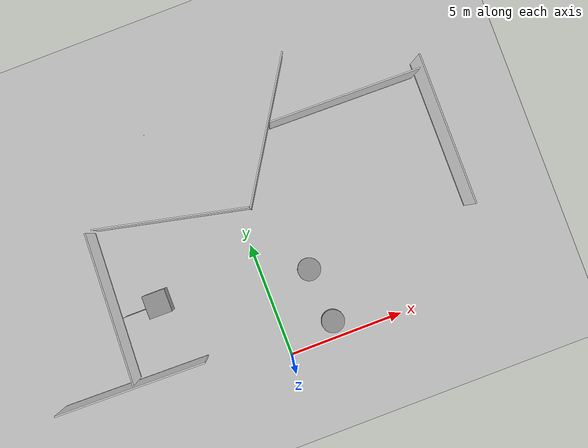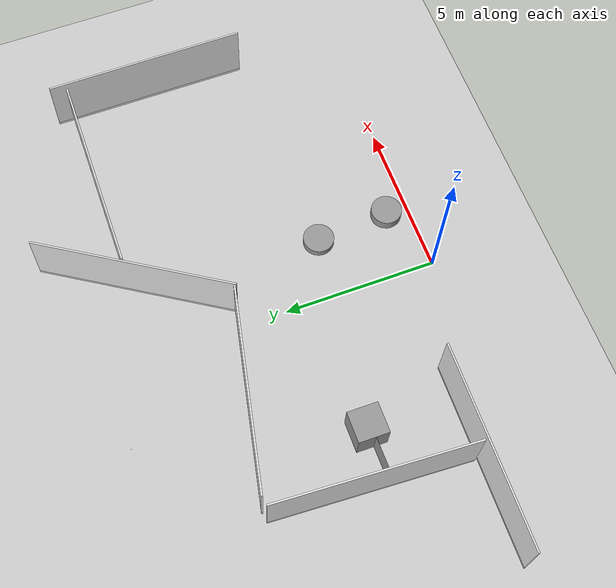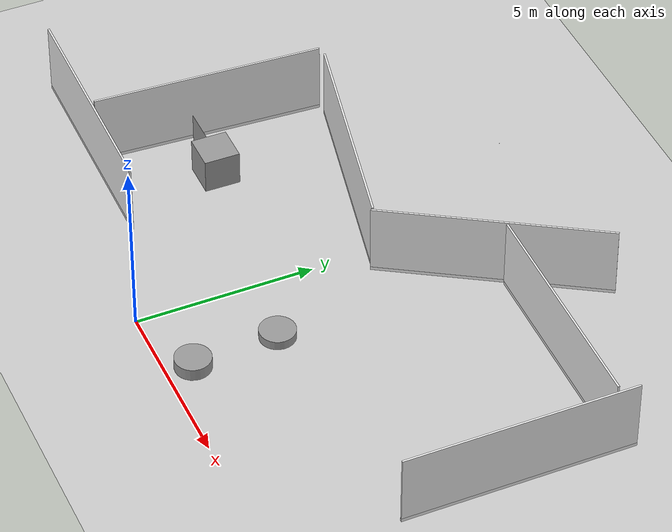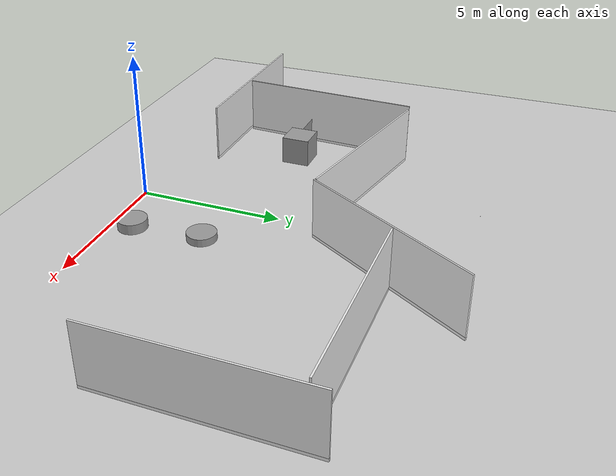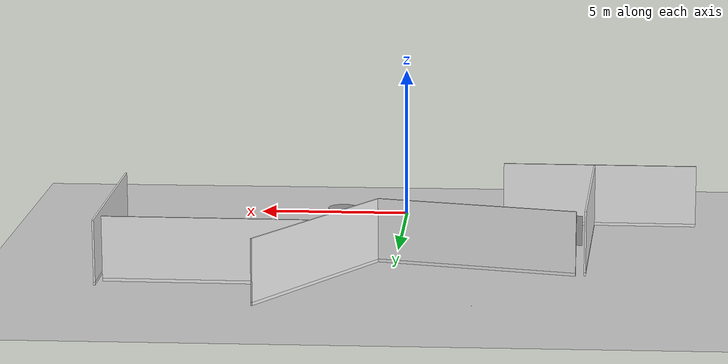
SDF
<sdf version="1.7">
 <world name="default">
  <model name="ground_plane">
   <static>1</static>
   <link name="link">
    <collision name="collision">
     <geometry><plane><normal>0 0 1</normal><size>100 100</size></plane></geometry>
     <surface><friction><ode><mu>100</mu><mu2>50</mu2></ode></friction></surface>
    </collision>
    <visual name="visual">
     <cast_shadows>0</cast_shadows>
     <geometry><plane><normal>0 0 1</normal><size>100 100</size></plane></geometry>
     <material>
      <script><uri>file://media/materials/scripts/gazebo.material</uri><name>Gazebo/Grey</name></script>
     </material>
    </visual>
   </link>
  </model>
  <model name="unit_cylinder">
   <pose>2.14694 0.738304 0.175618 0 -0 2.7e-05</pose>
   <link name="link">
    <inertial>
     <mass>1</mass>
     <inertia><ixx>0.145833</ixx><ixy>0</ixy><ixz>0</ixz><iyy>0.145833</iyy><iyz>0</iyz><izz>0.125</izz></inertia>
    </inertial>
    <collision name="collision">
     <geometry><cylinder><radius>0.5</radius><length>0.351255</length></cylinder></geometry>
    </collision>
    <visual name="visual">
     <geometry><cylinder><radius>0.5</radius><length>0.351255</length></cylinder></geometry>
     <material>
      <script><name>Gazebo/Grey</name><uri>file://media/materials/scripts/gazebo.material</uri></script>
     </material>
    </visual>
   </link>
  </model>
  <model name="unit_cylinder_0">
   <pose>1.98294 3.15713 0.130229 -0 -0 -0.02272</pose>
   <link name="link">
    <inertial>
     <mass>1</mass>
     <inertia><ixx>0.145833</ixx><ixy>0</ixy><ixz>0</ixz><iyy>0.145833</iyy><iyz>0</iyz><izz>0.125</izz></inertia>
    </inertial>
    <collision name="collision">
     <geometry><cylinder><radius>0.5</radius><length>0.260477</length></cylinder></geometry>
    </collision>
    <visual name="visual">
     <geometry><cylinder><radius>0.5</radius><length>0.260477</length></cylinder></geometry>
     <material>
      <script><name>Gazebo/Grey</name><uri>file://media/materials/scripts/gazebo.material</uri></script>
     </material>
    </visual>
   </link>
  </model>
  <model name="unit_box">
   <pose>-4.50651 4.10936 0.499995 0 1e-05 -0.008331</pose>
   <link name="link">
    <inertial>
     <mass>1</mass>
     <inertia>
      <ixx>0.166667</ixx>
      <ixy>0</ixy>
      <ixz>0</ixz>
      <iyy>0.166667</iyy>
      <iyz>0</iyz>
      <izz>0.166667</izz>
     </inertia>
    </inertial>
    <collision name="collision"><geometry><box><size>1 1 1</size></box></geometry></collision>
    <visual name="visual">
     <geometry><box><size>1 1 1</size></box></geometry>
     <material>
      <script><name>Gazebo/Grey</name><uri>file://media/materials/scripts/gazebo.material</uri></script>
     </material>
    </visual>
   </link>
  </model>
  <model name="unit_cylinder_1">
   <pose>-2.60305 11.3525 0.000201 1.5708 -1.35369 -3.12185</pose>
   <link name="link">
    <inertial>
     <mass>1</mass>
     <inertia><ixx>0.145833</ixx><ixy>0</ixy><ixz>0</ixz><iyy>0.145833</iyy><iyz>0</iyz><izz>0.125</izz></inertia>
    </inertial>
    <collision name="collision">
     <geometry><cylinder><radius>0.000201114</radius><length>1</length></cylinder></geometry>
    </collision>
    <visual name="visual">
     <geometry><cylinder><radius>0.000201114</radius><length>1</length></cylinder></geometry>
     <material>
      <script><name>Gazebo/Grey</name><uri>file://media/materials/scripts/gazebo.material</uri></script>
     </material>
    </visual>
   </link>
  </model>
  <model name="unit_box_clone">
   <pose>-5.50698 4.0579 0.5 -4e-06 0 -0.001181</pose>
   <link name="link">
    <inertial>
     <mass>1</mass>
     <inertia>
      <ixx>0.166667</ixx>
      <ixy>0</ixy>
      <ixz>0</ixz>
      <iyy>0.166667</iyy>
      <iyz>0</iyz>
      <izz>0.166667</izz>
     </inertia>
    </inertial>
    <collision name="collision"><geometry><box><size>1 5.06525e-05 1</size></box></geometry></collision>
    <visual name="visual">
     <geometry><box><size>1 5.06525e-05 1</size></box></geometry>
     <material>
      <script><name>Gazebo/Grey</name><uri>file://media/materials/scripts/gazebo.material</uri></script>
     </material>
    </visual>
   </link>
  </model>
  <model name="full_wall_55_6475_2090">
   <link name="link">
    <inertial>
     <mass>50</mass>
     <inertia><ixx>1</ixx><ixy>0</ixy><ixz>0</ixz><iyy>1</iyy><iyz>0</iyz><izz>1</izz></inertia>
    </inertial>
    <visual name="bottom_frame">
     <pose>0 0 0.05 0 -0 0</pose>
     <geometry><box><size>0.055 6.475 0.1</size></box></geometry>
     <material>
      <script><uri>model://base_materials/color/scripts</uri><name>hsr_color/white</name></script>
     </material>
    </visual>
    <collision name="collision_bottom_frame">
     <pose>0 0 0.05 0 -0 0</pose>
     <geometry><box><size>0.055 6.475 0.1</size></box></geometry>
    </collision>
    <visual name="wall">
     <pose>0 0 1.095 0 -0 0</pose>
     <geometry><box><size>0.055 6.475 1.99</size></box></geometry>
     <material>
      <script>
       <uri>model://base_materials/wall/scripts</uri>
       <uri>model://base_materials/wall/textures</uri>
       <name>wall/white_noise</name>
      </script>
     </material>
    </visual>
    <collision name="collision_wall">
     <pose>0 0 1.095 0 -0 0</pose>
     <geometry><box><size>0.055 6.475 1.99</size></box></geometry>
    </collision>
    <velocity_decay><linear>0</linear><angular>0</angular></velocity_decay>
   </link>
   <static>1</static>
   <pose>9.18279 6.58409 0 0 -0 0</pose>
  </model>
  <model name="full_wall_55_6475_2090_clone">
   <link name="link">
    <inertial>
     <mass>50</mass>
     <inertia><ixx>1</ixx><ixy>0</ixy><ixz>0</ixz><iyy>1</iyy><iyz>0</iyz><izz>1</izz></inertia>
    </inertial>
    <visual name="bottom_frame">
     <pose>0 0 0.05 0 -0 0</pose>
     <geometry><box><size>0.055 6.475 0.1</size></box></geometry>
     <material>
      <script><uri>model://base_materials/color/scripts</uri><name>hsr_color/white</name></script>
     </material>
    </visual>
    <collision name="collision_bottom_frame">
     <pose>0 0 0.05 0 -0 0</pose>
     <geometry><box><size>0.055 6.475 0.1</size></box></geometry>
    </collision>
    <visual name="wall">
     <pose>0 0 1.095 0 -0 0</pose>
     <geometry><box><size>0.055 6.475 1.99</size></box></geometry>
     <material>
      <script>
       <uri>model://base_materials/wall/scripts</uri>
       <uri>model://base_materials/wall/textures</uri>
       <name>wall/white_noise</name>
      </script>
     </material>
    </visual>
    <collision name="collision_wall">
     <pose>0 0 1.095 0 -0 0</pose>
     <geometry><box><size>0.055 6.475 1.99</size></box></geometry>
    </collision>
    <velocity_decay><linear>0</linear><angular>0</angular></velocity_decay>
   </link>
   <static>1</static>
   <pose>2.30458 9.15688 0 -0.007021 0 2.57826</pose>
  </model>
  <model name="full_wall_55_6475_2090_clone_clone_0">
   <link name="link">
    <inertial>
     <mass>50</mass>
     <inertia><ixx>1</ixx><ixy>0</ixy><ixz>0</ixz><iyy>1</iyy><iyz>0</iyz><izz>1</izz></inertia>
    </inertial>
    <visual name="bottom_frame">
     <pose>0 0 0.05 0 -0 0</pose>
     <geometry><box><size>0.055 6.475 0.1</size></box></geometry>
     <material>
      <script><uri>model://base_materials/color/scripts</uri><name>hsr_color/white</name></script>
     </material>
    </visual>
    <collision name="collision_bottom_frame">
     <pose>0 0 0.05 0 -0 0</pose>
     <geometry><box><size>0.055 6.475 0.1</size></box></geometry>
    </collision>
    <visual name="wall">
     <pose>0 0 1.095 0 -0 0</pose>
     <geometry><box><size>0.055 6.475 1.99</size></box></geometry>
     <material>
      <script>
       <uri>model://base_materials/wall/scripts</uri>
       <uri>model://base_materials/wall/textures</uri>
       <name>wall/white_noise</name>
      </script>
     </material>
    </visual>
    <collision name="collision_wall">
     <pose>0 0 1.095 0 -0 0</pose>
     <geometry><box><size>0.055 6.475 1.99</size></box></geometry>
    </collision>
    <velocity_decay><linear>0</linear><angular>0</angular></velocity_decay>
   </link>
   <static>1</static>
   <pose>5.77165 9.34181 0 0 -0 1.55299</pose>
  </model>
  <model name="full_wall_55_6475_2090_clone_clone_0_clone_0">
   <link name="link">
    <inertial>
     <mass>50</mass>
     <inertia><ixx>1</ixx><ixy>0</ixy><ixz>0</ixz><iyy>1</iyy><iyz>0</iyz><izz>1</izz></inertia>
    </inertial>
    <visual name="bottom_frame">
     <pose>0 0 0.05 0 -0 0</pose>
     <geometry><box><size>0.055 6.475 0.1</size></box></geometry>
     <material>
      <script><uri>model://base_materials/color/scripts</uri><name>hsr_color/white</name></script>
     </material>
    </visual>
    <collision name="collision_bottom_frame">
     <pose>0 0 0.05 0 -0 0</pose>
     <geometry><box><size>0.055 6.475 0.1</size></box></geometry>
    </collision>
    <visual name="wall">
     <pose>0 0 1.095 0 -0 0</pose>
     <geometry><box><size>0.055 6.475 1.99</size></box></geometry>
     <material>
      <script>
       <uri>model://base_materials/wall/scripts</uri>
       <uri>model://base_materials/wall/textures</uri>
       <name>wall/white_noise</name>
      </script>
     </material>
    </visual>
    <collision name="collision_wall">
     <pose>0 0 1.095 0 -0 0</pose>
     <geometry><box><size>0.055 6.475 1.99</size></box></geometry>
    </collision>
    <velocity_decay><linear>0</linear><angular>0</angular></velocity_decay>
   </link>
   <static>1</static>
   <pose>-2.60533 7.18337 0 0 -0 1.3517</pose>
  </model>
  <model name="full_wall_55_6475_2090_clone_clone_0_clone_0_clone">
   <link name="link">
    <inertial>
     <mass>50</mass>
     <inertia><ixx>1</ixx><ixy>0</ixy><ixz>0</ixz><iyy>1</iyy><iyz>0</iyz><izz>1</izz></inertia>
    </inertial>
    <visual name="bottom_frame">
     <pose>0 0 0.05 0 -0 0</pose>
     <geometry><box><size>0.055 6.475 0.1</size></box></geometry>
     <material>
      <script><uri>model://base_materials/color/scripts</uri><name>hsr_color/white</name></script>
     </material>
    </visual>
    <collision name="collision_bottom_frame">
     <pose>0 0 0.05 0 -0 0</pose>
     <geometry><box><size>0.055 6.475 0.1</size></box></geometry>
    </collision>
    <visual name="wall">
     <pose>0 0 1.095 0 -0 0</pose>
     <geometry><box><size>0.055 6.475 1.99</size></box></geometry>
     <material>
      <script>
       <uri>model://base_materials/wall/scripts</uri>
       <uri>model://base_materials/wall/textures</uri>
       <name>wall/white_noise</name>
      </script>
     </material>
    </visual>
    <collision name="collision_wall">
     <pose>0 0 1.095 0 -0 0</pose>
     <geometry><box><size>0.055 6.475 1.99</size></box></geometry>
    </collision>
    <velocity_decay><linear>0</linear><angular>0</angular></velocity_decay>
   </link>
   <static>1</static>
   <pose>-6.23182 4.61697 0 0 -0 3.08646</pose>
  </model>
  <model name="full_wall_55_6475_2090_clone_clone_0_clone_3">
   <link name="link">
    <inertial>
     <mass>50</mass>
     <inertia><ixx>1</ixx><ixy>0</ixy><ixz>0</ixz><iyy>1</iyy><iyz>0</iyz><izz>1</izz></inertia>
    </inertial>
    <visual name="bottom_frame">
     <pose>0 0 0.05 0 -0 0</pose>
     <geometry><box><size>0.055 6.475 0.1</size></box></geometry>
     <material>
      <script><uri>model://base_materials/color/scripts</uri><name>hsr_color/white</name></script>
     </material>
    </visual>
    <collision name="collision_bottom_frame">
     <pose>0 0 0.05 0 -0 0</pose>
     <geometry><box><size>0.055 6.475 0.1</size></box></geometry>
    </collision>
    <visual name="wall">
     <pose>0 0 1.095 0 -0 0</pose>
     <geometry><box><size>0.055 6.475 1.99</size></box></geometry>
     <material>
      <script>
       <uri>model://base_materials/wall/scripts</uri>
       <uri>model://base_materials/wall/textures</uri>
       <name>wall/white_noise</name>
      </script>
     </material>
    </visual>
    <collision name="collision_wall">
     <pose>0 0 1.095 0 -0 0</pose>
     <geometry><box><size>0.055 6.475 1.99</size></box></geometry>
    </collision>
    <velocity_decay><linear>0</linear><angular>0</angular></velocity_decay>
   </link>
   <static>1</static>
   <pose>-6.59382 1.28898 0 0 -0 1.55299</pose>
  </model>
 </world>
</sdf>
